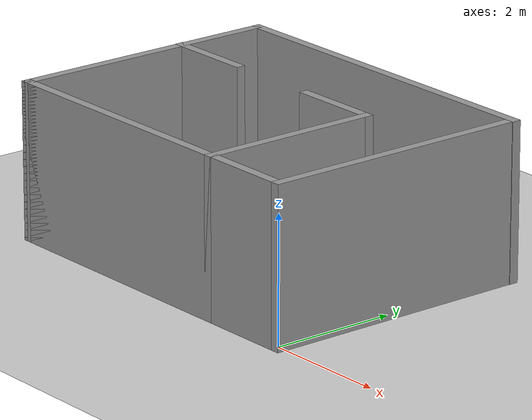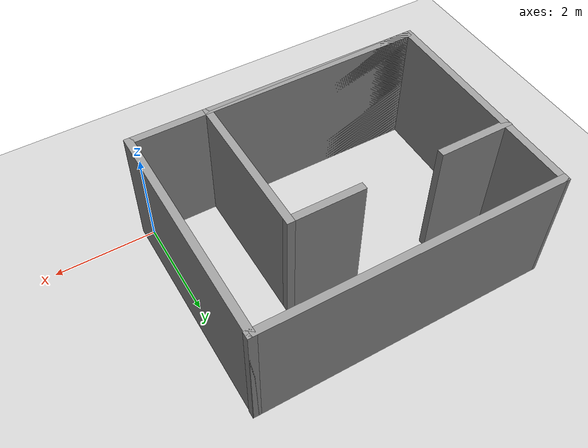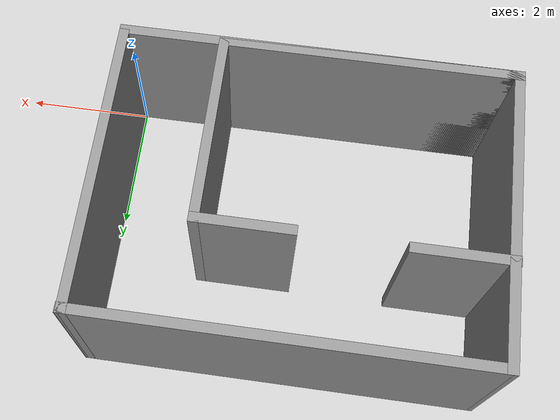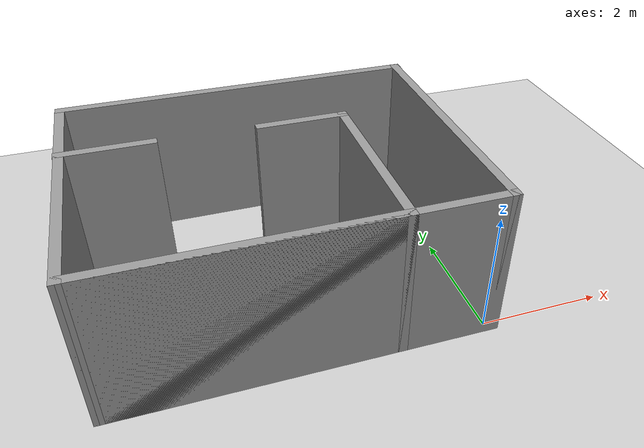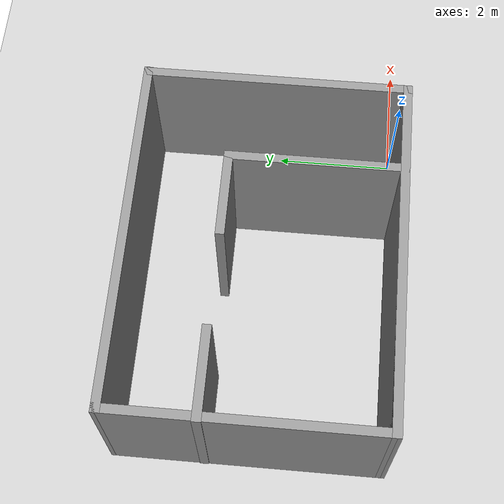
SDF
<sdf version="1.6">
 <world name="default">
  <light name="sun" type="directional">
   <pose>0 0 10 0 -0 0</pose>
   <diffuse>0.8 0.8 0.8 1</diffuse>
   <specular>0.2 0.2 0.2 1</specular>
   <attenuation>
    <range>1000</range>
    <constant>0.9</constant>
    <linear>0.01</linear>
    <quadratic>0.001</quadratic>
   </attenuation>
   <direction>-0.5 0.1 -0.9</direction>
  </light>
  <model name="ground_plane">
   <static>1</static>
   <link name="link">
    <collision name="collision">
     <geometry><plane><normal>0 0 1</normal><size>100 100</size></plane></geometry>
     <surface>
      <contact><collide_bitmask>65535</collide_bitmask></contact>
      <friction><ode><mu>100</mu><mu2>50</mu2></ode></friction>
     </surface>
    </collision>
    <visual name="visual">
     <cast_shadows>0</cast_shadows>
     <geometry><plane><normal>0 0 1</normal><size>100 100</size></plane></geometry>
     <material>
      <script><uri>file://media/materials/scripts/gazebo.material</uri><name>Gazebo/Grey</name></script>
     </material>
    </visual>
   </link>
  </model>
  <gravity>0 0 -9.8</gravity>
  <magnetic_field>6e-06 2.3e-05 -4.2e-05</magnetic_field>
  <atmosphere type="adiabatic"/>
  <physics name="default_physics" default="0" type="ode">
   <max_step_size>0.001</max_step_size>
   <real_time_factor>1</real_time_factor>
   <real_time_update_rate>1000</real_time_update_rate>
  </physics>
  <scene><ambient>0.4 0.4 0.4 1</ambient><background>0.7 0.7 0.7 1</background><shadows>1</shadows></scene>
  <audio><device>default</device></audio>
  <spherical_coordinates>
   <surface_model>EARTH_WGS84</surface_model>
   <latitude_deg>0</latitude_deg>
   <longitude_deg>0</longitude_deg>
   <elevation>0</elevation>
   <heading_deg>0</heading_deg>
  </spherical_coordinates>
  <model name="tour_guide">
   <model name="room_hallway">
    <pose>1e-06 -0 0 0 -0 0</pose>
    <link name="Wall_0">
     <collision name="Wall_0_Collision">
      <geometry><box><size>6 0.15 2.5</size></box></geometry>
      <pose>0 0 1.25 0 -0 0</pose>
     </collision>
     <visual name="Wall_0_Visual">
      <pose>0 0 1.25 0 -0 0</pose>
      <geometry><box><size>6 0.15 2.5</size></box></geometry>
      <material>
       <script><uri>file://media/materials/scripts/gazebo.material</uri><name>Gazebo/Grey</name></script>
       <ambient>1 1 1 1</ambient>
      </material>
      <meta><layer>0</layer></meta>
     </visual>
     <pose>-0.002755 -2.175 0 0 -0 0</pose>
    </link>
    <link name="Wall_1">
     <collision name="Wall_1_Collision">
      <geometry><box><size>4.5 0.15 2.5</size></box></geometry>
      <pose>0 0 1.25 0 -0 0</pose>
     </collision>
     <visual name="Wall_1_Visual">
      <pose>0 0 1.25 0 -0 0</pose>
      <geometry><box><size>4.5 0.15 2.5</size></box></geometry>
      <material>
       <script><uri>file://media/materials/scripts/gazebo.material</uri><name>Gazebo/Grey</name></script>
       <ambient>1 1 1 1</ambient>
      </material>
      <meta><layer>0</layer></meta>
     </visual>
     <pose>2.92225 0 0 0 -0 1.5708</pose>
    </link>
    <link name="Wall_10">
     <collision name="Wall_10_Collision">
      <geometry><box><size>1.5 0.15 2.5</size></box></geometry>
      <pose>0 0 1.25 0 -0 0</pose>
     </collision>
     <visual name="Wall_10_Visual">
      <pose>0 0 1.25 0 -0 0</pose>
      <geometry><box><size>1.5 0.15 2.5</size></box></geometry>
      <material>
       <script><uri>file://media/materials/scripts/gazebo.material</uri><name>Gazebo/Grey</name></script>
       <ambient>1 1 1 1</ambient>
      </material>
      <meta><layer>0</layer></meta>
     </visual>
     <pose>-2.25725 0.704997 0 0 -0 0</pose>
    </link>
    <link name="Wall_2">
     <collision name="Wall_2_Collision">
      <geometry><box><size>0.16 0.15 2.5</size></box></geometry>
      <pose>0 0 1.25 0 -0 0</pose>
     </collision>
     <visual name="Wall_2_Visual">
      <pose>0 0 1.25 0 -0 0</pose>
      <geometry><box><size>0.16 0.15 2.5</size></box></geometry>
      <material>
       <script><uri>file://media/materials/scripts/gazebo.material</uri><name>Gazebo/Grey</name></script>
       <ambient>1 1 1 1</ambient>
      </material>
      <meta><layer>0</layer></meta>
     </visual>
     <pose>2.92725 2.175 0 0 -0 0</pose>
    </link>
    <link name="Wall_3">
     <collision name="Wall_3_Collision">
      <geometry><box><size>6 0.15 2.5</size></box></geometry>
      <pose>0 0 1.25 0 -0 0</pose>
     </collision>
     <visual name="Wall_3_Visual">
      <pose>0 0 1.25 0 -0 0</pose>
      <geometry><box><size>6 0.15 2.5</size></box></geometry>
      <material>
       <script><uri>file://media/materials/scripts/gazebo.material</uri><name>Gazebo/Grey</name></script>
       <ambient>1 1 1 1</ambient>
      </material>
      <meta><layer>0</layer></meta>
     </visual>
     <pose>0.007245 2.175 0 0 -0 3.14159</pose>
    </link>
    <link name="Wall_4">
     <collision name="Wall_4_Collision">
      <geometry><box><size>4.5 0.15 2.5</size></box></geometry>
      <pose>0 0 1.25 0 -0 0</pose>
     </collision>
     <visual name="Wall_4_Visual">
      <pose>0 0 1.25 0 -0 0</pose>
      <geometry><box><size>4.5 0.15 2.5</size></box></geometry>
      <material>
       <script><uri>file://media/materials/scripts/gazebo.material</uri><name>Gazebo/Grey</name></script>
       <ambient>1 1 1 1</ambient>
      </material>
      <meta><layer>0</layer></meta>
     </visual>
     <pose>-2.92275 0 0 0 -0 -1.57309</pose>
    </link>
    <link name="Wall_6">
     <collision name="Wall_6_Collision">
      <geometry><box><size>4.5 0.15 2.5</size></box></geometry>
      <pose>0 0 1.25 0 -0 0</pose>
     </collision>
     <visual name="Wall_6_Visual">
      <pose>0 0 1.25 0 -0 0</pose>
      <geometry><box><size>4.5 0.15 2.5</size></box></geometry>
      <material>
       <script><uri>file://media/materials/scripts/gazebo.material</uri><name>Gazebo/Grey</name></script>
       <ambient>1 1 1 1</ambient>
      </material>
      <meta><layer>0</layer></meta>
     </visual>
     <pose>-0.752755 -2.175 0 0 -0 0</pose>
    </link>
    <link name="Wall_7">
     <collision name="Wall_7_Collision">
      <geometry><box><size>3 0.15 2.5</size></box></geometry>
      <pose>0 0 1.25 0 -0 0</pose>
     </collision>
     <visual name="Wall_7_Visual">
      <pose>0 0 1.25 0 -0 0</pose>
      <geometry><box><size>3 0.15 2.5</size></box></geometry>
      <material>
       <script><uri>file://media/materials/scripts/gazebo.material</uri><name>Gazebo/Grey</name></script>
       <ambient>1 1 1 1</ambient>
      </material>
      <meta><layer>0</layer></meta>
     </visual>
     <pose>1.42224 -0.75 0 0 -0 1.5708</pose>
    </link>
    <link name="Wall_8">
     <collision name="Wall_8_Collision">
      <geometry><box><size>1.5 0.15 2.5</size></box></geometry>
      <pose>0 0 1.25 0 -0 0</pose>
     </collision>
     <visual name="Wall_8_Visual">
      <pose>0 0 1.25 0 -0 0</pose>
      <geometry><box><size>1.5 0.15 2.5</size></box></geometry>
      <material>
       <script><uri>file://media/materials/scripts/gazebo.material</uri><name>Gazebo/Grey</name></script>
       <ambient>1 1 1 1</ambient>
      </material>
      <meta><layer>0</layer></meta>
     </visual>
     <pose>0.747245 0.675 0 0 -0 3.14159</pose>
    </link>
    <static>1</static>
   </model>
   <static>0</static>
   <pose>-2.82793 2.105 0 0 0 -0.001491</pose>
  </model>
 </world>
</sdf>
